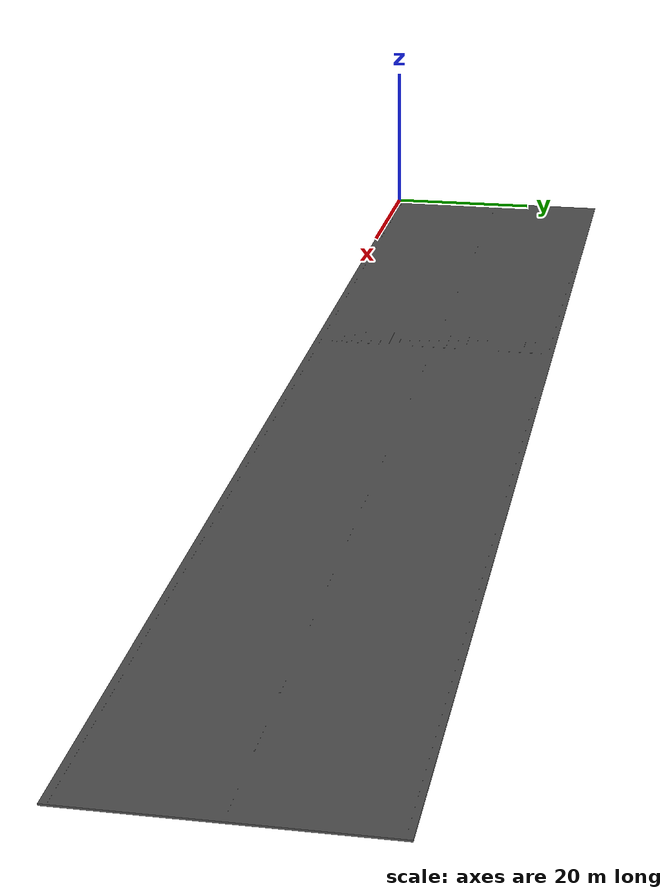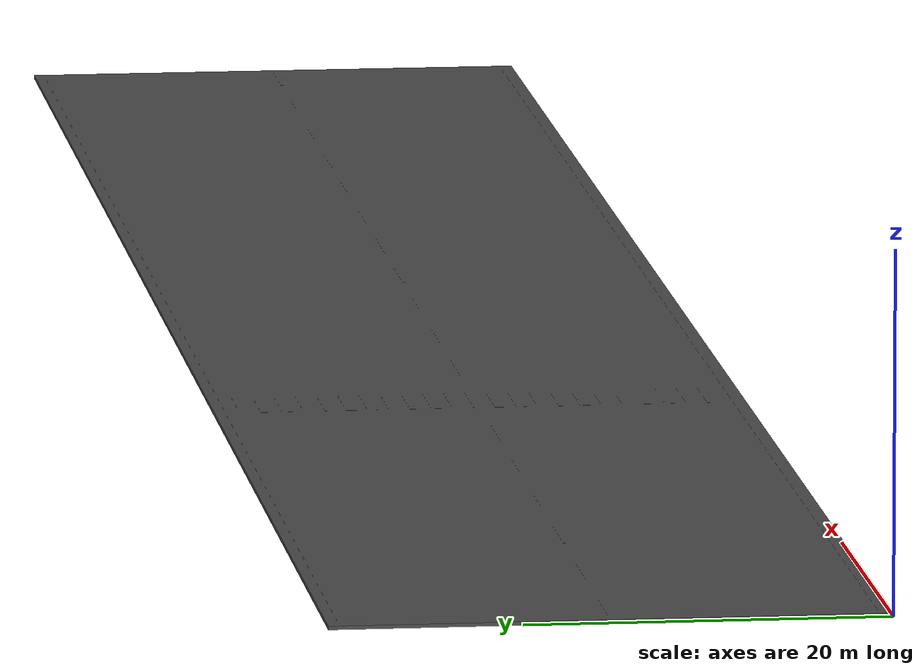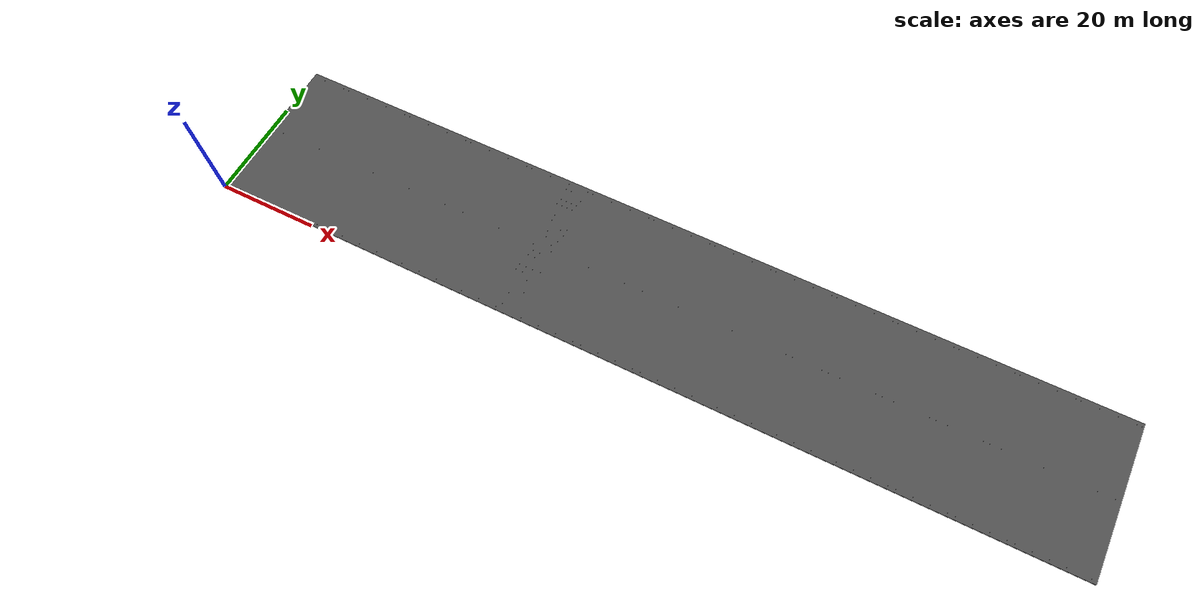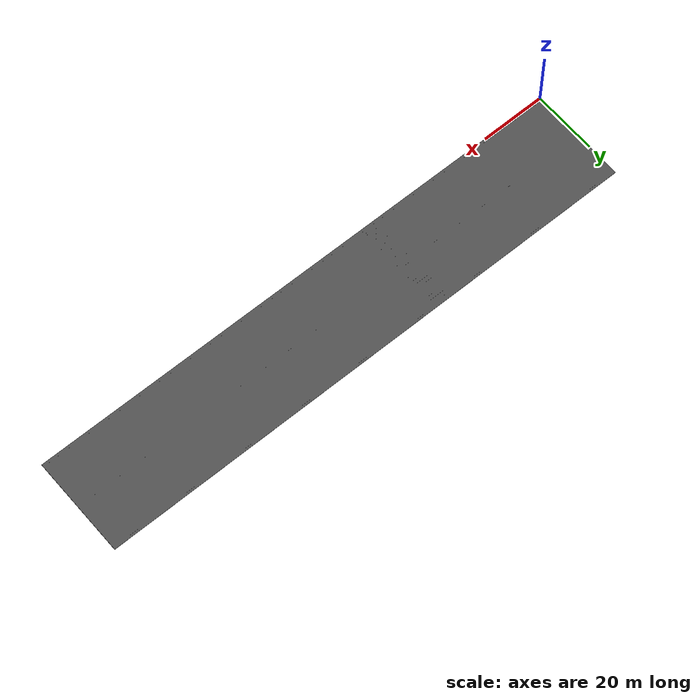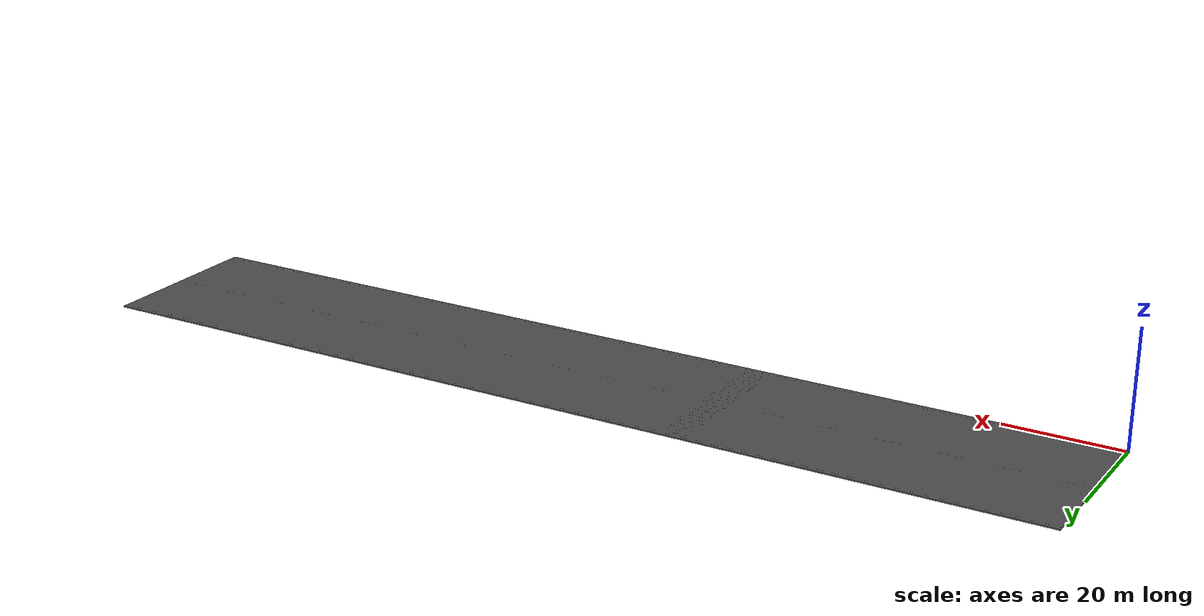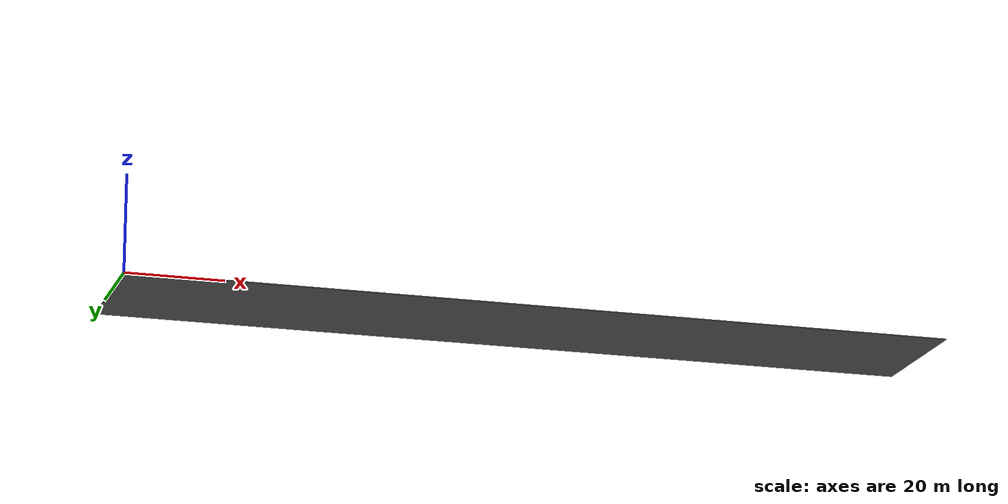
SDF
<?xml version="1.0" ?>
<sdf version="1.6">
  <model name="road1">
    <static>true</static>
      <link name="road1">
        <pose frame=''>0 0 0 0 0 0</pose>
          <collision name="road1">
            <geometry>
              <mesh>
                <uri>model://road1/model.dae</uri>
              </mesh>
            </geometry>
          </collision>
          <visual name="road1">
          <cast_shadows>false</cast_shadows>
            <geometry>
              <mesh>
                <uri>model://road1/model.dae</uri>
              </mesh>
            </geometry>
            <material>
              <script>
                <uri>model://road1/model.dae</uri>
                <name>road1</name>
              </script>
            </material>
          </visual>
      </link>
  </model>
</sdf>
